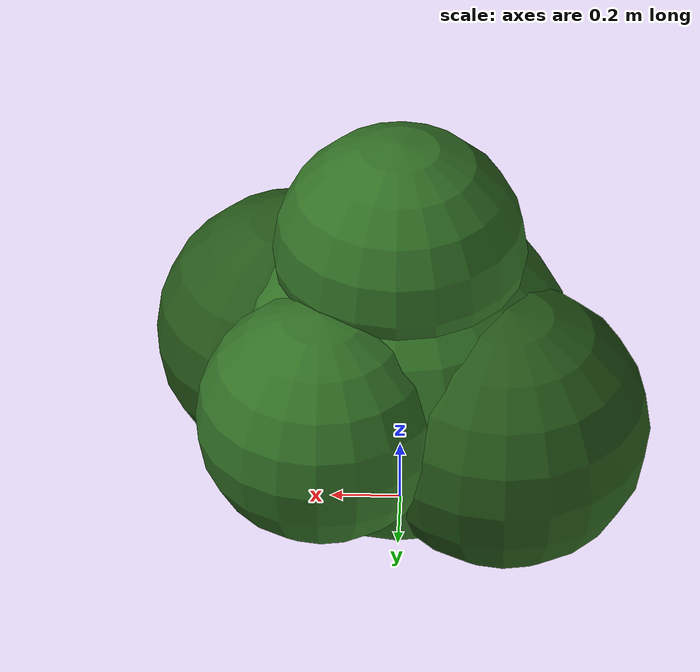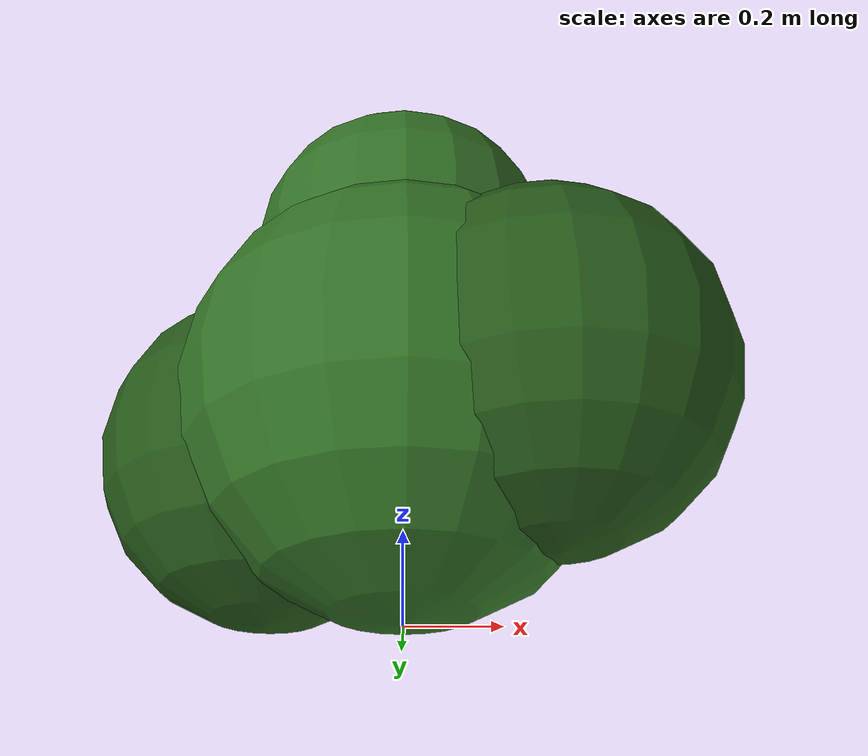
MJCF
<mujoco>
  <!-- Bush / shrub -->
  <asset>
    <material name="bush_green" rgba="0.2 0.45 0.15 1"/>
    <material name="bush_dark" rgba="0.15 0.35 0.1 1"/>
  </asset>

  <worldbody>
    <body name="bush">
      <!-- Multiple overlapping spheres for organic bush shape -->
      <geom name="bush_main" type="sphere" size="0.5" pos="0 0 0.5" material="bush_green"/>
      <geom name="bush_top" type="sphere" size="0.35" pos="0 0 0.9" material="bush_green"/>
      <geom name="bush_left" type="sphere" size="0.4" pos="-0.3 0.2 0.45" material="bush_dark"/>
      <geom name="bush_right" type="sphere" size="0.4" pos="0.3 -0.15 0.5" material="bush_dark"/>
      <geom name="bush_front" type="sphere" size="0.35" pos="0.2 0.3 0.55" material="bush_green"/>
    </body>
  </worldbody>
</mujoco>
